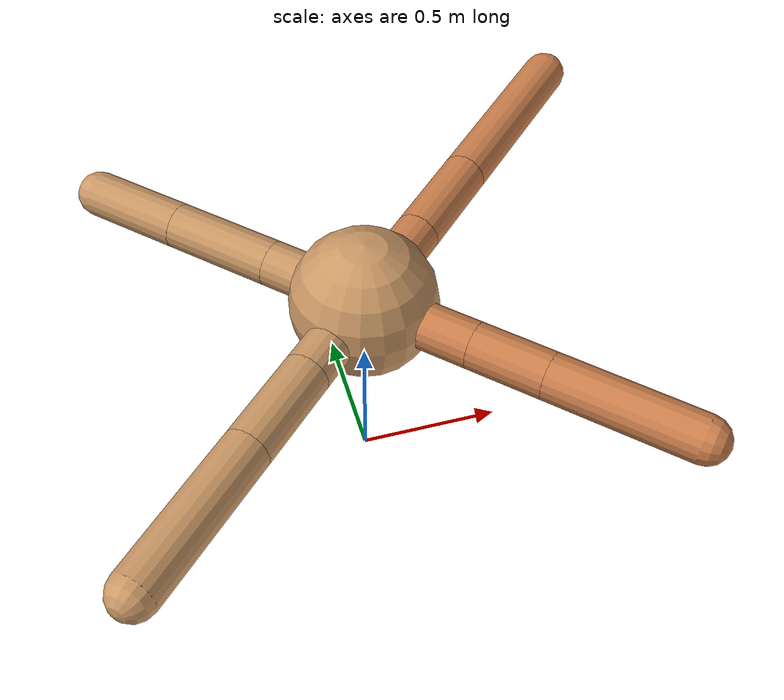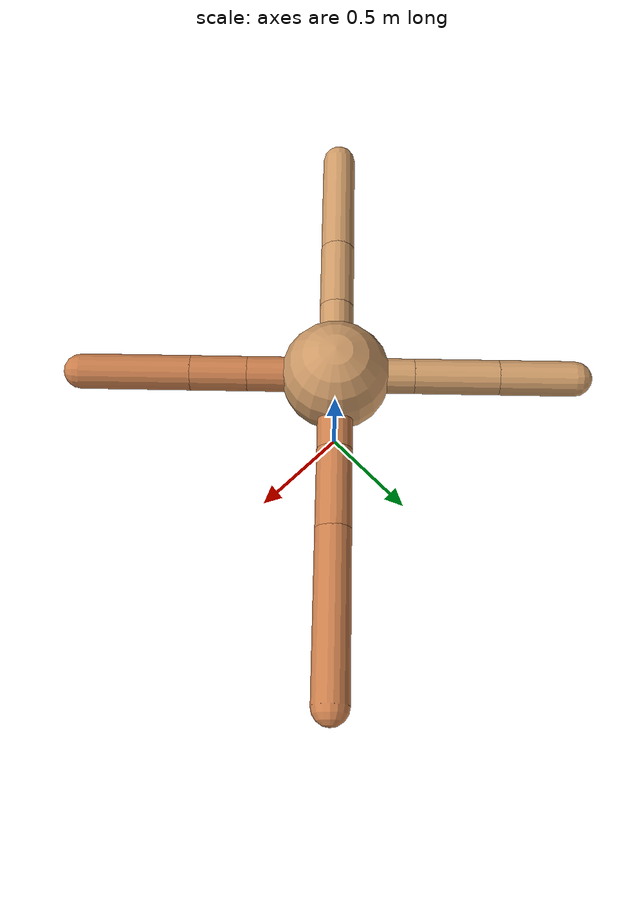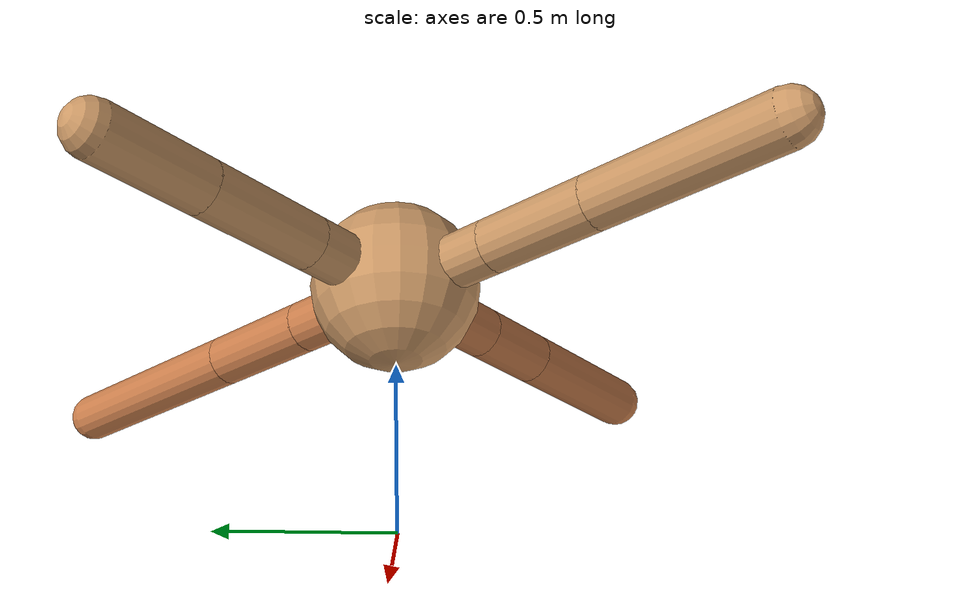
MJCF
<mujoco model="ant">
  <compiler angle="degree" coordinate="local" inertiafromgeom="true" />
  <option integrator="RK4" timestep="0.01" />
  <custom>
    <numeric data="0.0 0.0 0.55 1.0 0.0 0.0 0.0 0.0 1.0 0.0 -1.0 0.0 -1.0 0.0 1.0" name="init_qpos" />
  </custom>
  <default>
    <joint armature="1" damping="1" limited="true" />
    <geom conaffinity="0" condim="3" density="5.0" friction="1.5 0.1 0.1" margin="0.01" rgba="0.8 0.6 0.4 1" />
  </default>
  <worldbody>
    <body name="torso" pos="0 0 0.75">
      <geom name="torso_geom" pos="0 0 0" size="0.25" type="sphere" />

      <body name="front_left_leg" pos="0 0 0">
        <geom fromto="0.0 0.0 0.0 0.263171911053341 0.263171911053341 0.0" name="aux_1_geom" size="0.08" type="capsule" rgba=".8 .5 .3 1" />
        <body name="aux_1" pos="0.263171911053341 0.263171911053341 0.0">
          <joint axis="0 0 1" name="hip_1" pos="0.0 0.0 0.0" range="-40 40" type="hinge" />
          <geom fromto="0.0 0.0 0.0 0.25720507491395844 0.25720507491395844 0.0" name="left_leg_geom" size="0.08" type="capsule" rgba=".8 .5 .3 1" />
          <body pos="0.25720507491395844 0.25720507491395844 0.0" name="front_left_foot">
            <joint axis="-1 1 0" name="ankle_1" pos="0.0 0.0 0.0" range="30 100" type="hinge" />
            <geom fromto="0.0 0.0 0.0 0.5095135327298855 0.5095135327298855 0.0" name="left_ankle_geom" size="0.08" type="capsule" rgba=".8 .5 .3 1" />
          </body>
        </body>
      </body>
      <body name="front_right_leg" pos="0 0 0">
        <geom fromto="0.0 0.0 0.0 -0.25203198866598225 0.25203198866598225 0.0" name="aux_2_geom" size="0.08" type="capsule" />
        <body name="aux_2" pos="-0.25203198866598225 0.25203198866598225 0.0">
          <joint axis="0 0 1" name="hip_2" pos="0.0 0.0 0.0" range="-40 40" type="hinge" />
          <geom fromto="0.0 0.0 0.0 -0.27128874075558357 0.27128874075558357 0.0" name="right_leg_geom" size="0.08" type="capsule" />
          <body pos="-0.27128874075558357 0.27128874075558357 0.0" name="front_right_foot">
            <joint axis="1 1 0" name="ankle_2" pos="0.0 0.0 0.0" range="-100 -30" type="hinge" />
            <geom fromto="0.0 0.0 0.0 -0.24473852047695557 0.24473852047695557 0.0" name="right_ankle_geom" size="0.08" type="capsule" />
          </body>
        </body>
      </body>
      <body name="left_back_leg" pos="0 0 0">
        <geom fromto="0.0 0.0 0.0 -0.25412445400134565 -0.25412445400134565 0.0" name="aux_3_geom" size="0.08" type="capsule" />
        <body name="aux_3" pos="-0.25412445400134565 -0.25412445400134565 0.0">
          <joint axis="0 0 1" name="hip_3" pos="0.0 0.0 0.0" range="-40 40" type="hinge" />
          <geom fromto="0.0 0.0 0.0 -0.2343394573678956 -0.2343394573678956 0.0" name="back_leg_geom" size="0.08" type="capsule" />
          <body pos="-0.2343394573678956 -0.2343394573678956 0.0" name="left_back_foot">
            <joint axis="-1 1 0" name="ankle_3" pos="0.0 0.0 0.0" range="-100 -30" type="hinge" />
            <geom fromto="0.0 0.0 0.0 -0.3866695227852914 -0.3866695227852914 0.0" name="third_ankle_geom" size="0.08" type="capsule" />
          </body>
        </body>
      </body>
      <body name="right_back_leg" pos="0 0 0">
        <geom fromto="0.0 0.0 0.0 0.28391186501657273 -0.28391186501657273 0.0" name="aux_4_geom" size="0.08" type="capsule" rgba=".8 .5 .3 1" />
        <body name="aux_4" pos="0.28391186501657273 -0.28391186501657273 0.0">
          <joint axis="0 0 1" name="hip_4" pos="0.0 0.0 0.0" range="-40 40" type="hinge" />
          <geom fromto="0.0 0.0 0.0 0.1824798502557834 -0.1824798502557834 0.0" name="rightback_leg_geom" size="0.08" type="capsule" rgba=".8 .5 .3 1" />
          <body pos="0.1824798502557834 -0.1824798502557834 0.0" name="right_back_foot">
            <joint axis="1 1 0" name="ankle_4" pos="0.0 0.0 0.0" range="30 100" type="hinge" />
            <geom fromto="0.0 0.0 0.0 0.3545735512233702 -0.3545735512233702 0.0" name="fourth_ankle_geom" size="0.08" type="capsule" rgba=".8 .5 .3 1" />
          </body>
        </body>
      </body>
    </body>
  </worldbody>
  <actuator>
    <motor ctrllimited="true" ctrlrange="-1.0 1.0" joint="hip_4" gear="150" />
    <motor ctrllimited="true" ctrlrange="-1.0 1.0" joint="ankle_4" gear="150" />
    <motor ctrllimited="true" ctrlrange="-1.0 1.0" joint="hip_1" gear="150" />
    <motor ctrllimited="true" ctrlrange="-1.0 1.0" joint="ankle_1" gear="150" />
    <motor ctrllimited="true" ctrlrange="-1.0 1.0" joint="hip_2" gear="150" />
    <motor ctrllimited="true" ctrlrange="-1.0 1.0" joint="ankle_2" gear="150" />
    <motor ctrllimited="true" ctrlrange="-1.0 1.0" joint="hip_3" gear="150" />
    <motor ctrllimited="true" ctrlrange="-1.0 1.0" joint="ankle_3" gear="150" />
  </actuator>
</mujoco>
